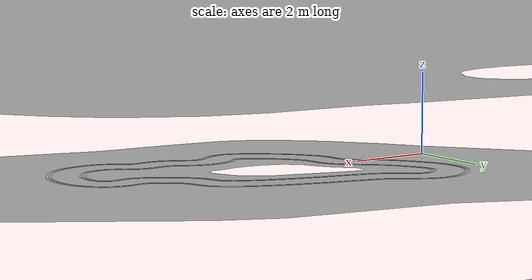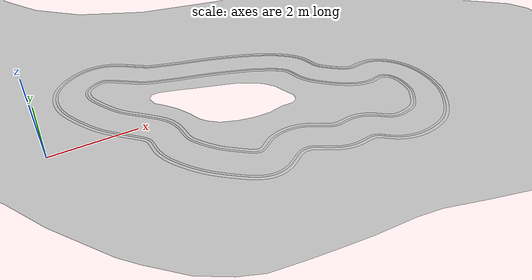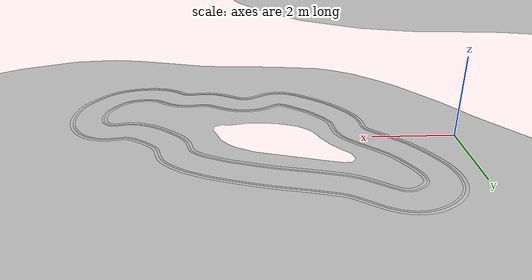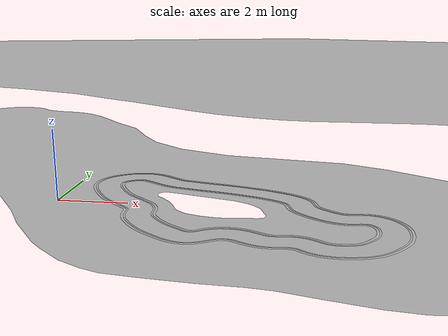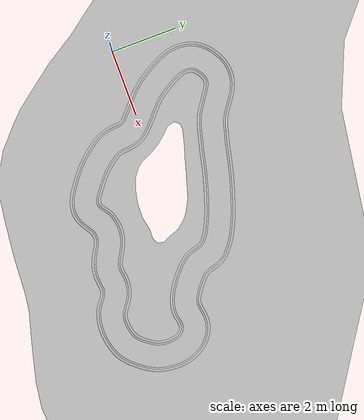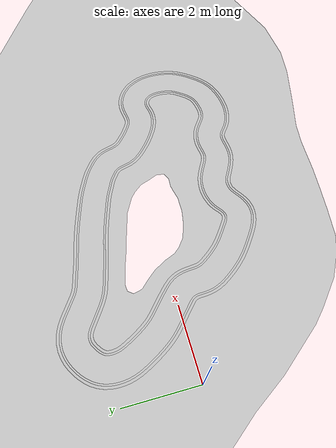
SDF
<?xml version="1.0"?>
<sdf version="1.4">
  <model name="Canada_Training_model">
    <link name="Canad_track_fieldLink">
      <collision name="collision">
        <pose>0 0 0 0 0 0</pose>
        <geometry>
          <mesh>
            <uri>model://meshes/Canada_Training/Canad_track_field.dae</uri>
          </mesh>
        </geometry>
      </collision>
      <visual name="visual">
        <pose>0 0 0 0 0 0</pose>
        <geometry>
          <mesh>
            <uri>model://meshes/Canada_Training/Canad_track_field.dae</uri>
          </mesh>
        </geometry>
      </visual>
    </link>
    <link name="Canad_track_roadLink">
      <collision name="collision">
        <pose>0 0 0 0 0 0</pose>
        <geometry>
          <mesh>
            <uri>model://meshes/Canada_Training/Canad_track_road.dae</uri>
          </mesh>
        </geometry>
      </collision>
      <visual name="visual">
        <pose>0 0 0 0 0 0</pose>
        <geometry>
          <mesh>
            <uri>model://meshes/Canada_Training/Canad_track_road.dae</uri>
          </mesh>
        </geometry>
      </visual>
    </link>
    <link name="Canad_track_road_barrierLink">
      <visual name="visual">
        <pose>0 0 0 0 0 0</pose>
        <geometry>
          <mesh>
            <uri>model://meshes/Canada_Training/Canad_track_road_barrier.dae</uri>
          </mesh>
        </geometry>
      </visual>
    </link>
    <link name="Canad_track_road_outerlineLink">
      <visual name="visual">
        <pose>0 0 0 0 0 0</pose>
        <geometry>
          <mesh>
            <uri>model://meshes/Canada_Training/Canad_track_road_outerline.dae</uri>
          </mesh>
        </geometry>
      </visual>
    </link>
    <static>1</static>
  </model>
</sdf>
